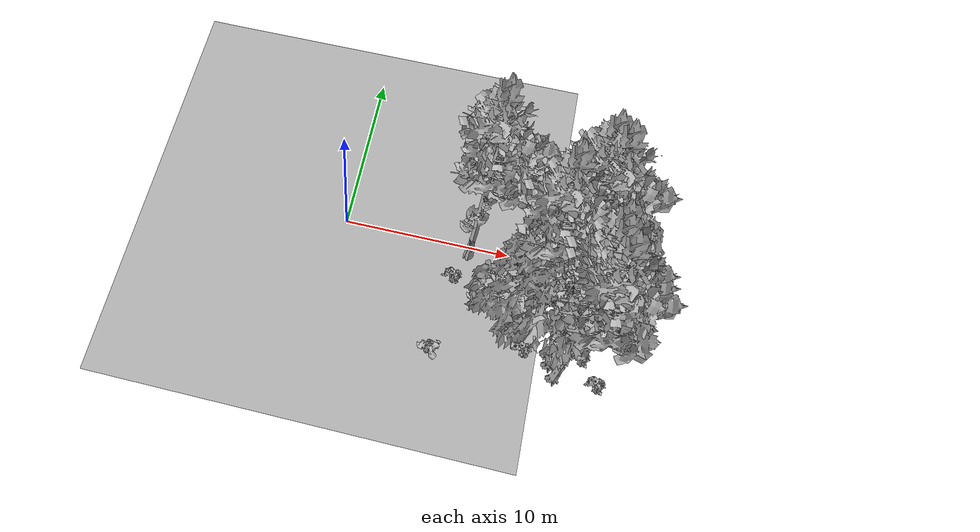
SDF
<sdf version="1.7">
 <world name="default">
  <model name="ground_plane">
   <static>1</static>
   <link name="link">
    <collision name="collision">
     <pose>-50 0 0 0 -0 0</pose>
     <geometry><plane><normal>0 0 1</normal><size>80 80</size></plane></geometry>
     <surface><contact><ode><min_depth>0.01</min_depth><max_vel>0</max_vel></ode></contact></surface>
    </collision>
    <visual name="grass">
     <cast_shadows>0</cast_shadows>
     <geometry>
      <mesh>
       <scale>0.46714285714285714 0.46714285714285714 0.1</scale>
       <uri>file://grass_plane/meshes/grass_plane.dae</uri>
      </mesh>
     </geometry>
    </visual>
   </link>
  </model>
  <model name="Tree 112">
   <static>1</static>
   <pose>13.443369570241934 -6.011805924724236 0 1.57079 -0 0</pose>
   <link name="link">
    <collision name="collision">
     <geometry><mesh><scale>3.5 5 3.5</scale><uri>model://tree_9/meshes/tree_9.obj</uri></mesh></geometry>
    </collision>
    <visual name="visual">
     <geometry><mesh><scale>3.5 5 3.5</scale><uri>model://tree_9/meshes/tree_9.obj</uri></mesh></geometry>
    </visual>
   </link>
  </model>
  <model name="Tree 174">
   <static>1</static>
   <pose>13.38417410480691 -5.46445035977024 0 1.57079 -0 0</pose>
   <link name="link">
    <collision name="collision">
     <geometry><mesh><scale>3.5 5 3.5</scale><uri>model://tree_9/meshes/tree_9.obj</uri></mesh></geometry>
    </collision>
    <visual name="visual">
     <geometry><mesh><scale>3.5 5 3.5</scale><uri>model://tree_9/meshes/tree_9.obj</uri></mesh></geometry>
    </visual>
   </link>
  </model>
  <model name="Tree 252">
   <static>1</static>
   <pose>13.440320900840938 -2.2874690477477273 0 1.57079 -0 0</pose>
   <link name="link">
    <collision name="collision">
     <geometry><mesh><scale>3.5 5 3.5</scale><uri>model://tree_2/meshes/tree_2.obj</uri></mesh></geometry>
    </collision>
    <visual name="visual">
     <geometry><mesh><scale>3.5 5 3.5</scale><uri>model://tree_2/meshes/tree_2.obj</uri></mesh></geometry>
    </visual>
   </link>
  </model>
  <model name="Tree 275">
   <static>1</static>
   <pose>13.149691221649732 -1.6502716162665507 0 1.57079 -0 0</pose>
   <link name="link">
    <collision name="collision">
     <geometry><mesh><scale>3.5 5 3.5</scale><uri>model://tree_9/meshes/tree_9.obj</uri></mesh></geometry>
    </collision>
    <visual name="visual">
     <geometry><mesh><scale>3.5 5 3.5</scale><uri>model://tree_9/meshes/tree_9.obj</uri></mesh></geometry>
    </visual>
   </link>
  </model>
  <model name="Tree 276">
   <static>1</static>
   <pose>7.681989460157439 -0.5636777708163336 0 1.57079 -0 0</pose>
   <link name="link">
    <collision name="collision">
     <geometry><mesh><scale>3.5 5 3.5</scale><uri>model://tree_9/meshes/tree_9.obj</uri></mesh></geometry>
    </collision>
    <visual name="visual">
     <geometry><mesh><scale>3.5 5 3.5</scale><uri>model://tree_9/meshes/tree_9.obj</uri></mesh></geometry>
    </visual>
   </link>
  </model>
  <model name="Tree 346">
   <static>1</static>
   <pose>12.546760151282449 -1.304693277121359 0 1.57079 -0 0</pose>
   <link name="link">
    <collision name="collision">
     <geometry><mesh><scale>3.5 5 3.5</scale><uri>model://tree_9/meshes/tree_9.obj</uri></mesh></geometry>
    </collision>
    <visual name="visual">
     <geometry><mesh><scale>3.5 5 3.5</scale><uri>model://tree_9/meshes/tree_9.obj</uri></mesh></geometry>
    </visual>
   </link>
  </model>
  <model name="Tree 524">
   <static>1</static>
   <pose>11.588094573133468 -4.972956877852042 0 1.57079 -0 0</pose>
   <link name="link">
    <collision name="collision">
     <geometry><mesh><scale>3.5 5 3.5</scale><uri>model://tree_2/meshes/tree_2.obj</uri></mesh></geometry>
    </collision>
    <visual name="visual">
     <geometry><mesh><scale>3.5 5 3.5</scale><uri>model://tree_2/meshes/tree_2.obj</uri></mesh></geometry>
    </visual>
   </link>
  </model>
  <model name="Tree 542">
   <static>1</static>
   <pose>11.157051692290608 -3.1228048936740294 0 1.57079 -0 0</pose>
   <link name="link">
    <collision name="collision">
     <geometry><mesh><scale>3.5 5 3.5</scale><uri>model://tree_9/meshes/tree_9.obj</uri></mesh></geometry>
    </collision>
    <visual name="visual">
     <geometry><mesh><scale>3.5 5 3.5</scale><uri>model://tree_9/meshes/tree_9.obj</uri></mesh></geometry>
    </visual>
   </link>
  </model>
  <model name="Tree 612">
   <static>1</static>
   <pose>13.798656640488716 -6.729752616913032 0 1.57079 -0 0</pose>
   <link name="link">
    <collision name="collision">
     <geometry><mesh><scale>3.5 5 3.5</scale><uri>model://tree_9/meshes/tree_9.obj</uri></mesh></geometry>
    </collision>
    <visual name="visual">
     <geometry><mesh><scale>3.5 5 3.5</scale><uri>model://tree_9/meshes/tree_9.obj</uri></mesh></geometry>
    </visual>
   </link>
  </model>
  <model name="Bush 47">
   <static>1</static>
   <pose>14.94408419045461 -3.2109747519997853 0 1.57079 -0 0</pose>
   <link name="link">
    <collision name="collision">
     <geometry><mesh><scale>2 2 2</scale><uri>model://bush_4/meshes/bush_4.obj</uri></mesh></geometry>
     <surface><contact><collide_without_contact>false</collide_without_contact></contact></surface>
    </collision>
    <visual name="visual">
     <geometry><mesh><scale>2 2 2</scale><uri>model://bush_4/meshes/bush_4.obj</uri></mesh></geometry>
    </visual>
   </link>
  </model>
  <model name="Bush 173">
   <static>1</static>
   <pose>15.115586260216553 -5.2869854791362485 0 1.57079 -0 0</pose>
   <link name="link">
    <collision name="collision">
     <geometry><mesh><scale>2 2 2</scale><uri>model://bush_2/meshes/bush_2.obj</uri></mesh></geometry>
     <surface><contact><collide_without_contact>false</collide_without_contact></contact></surface>
    </collision>
    <visual name="visual">
     <geometry><mesh><scale>2 2 2</scale><uri>model://bush_2/meshes/bush_2.obj</uri></mesh></geometry>
    </visual>
   </link>
  </model>
  <model name="Bush 210">
   <static>1</static>
   <pose>10.068934456624099 -1.9581382325161059 0 1.57079 -0 0</pose>
   <link name="link">
    <collision name="collision">
     <geometry><mesh><scale>2 2 2</scale><uri>model://bush_1/meshes/bush_1.obj</uri></mesh></geometry>
     <surface><contact><collide_without_contact>false</collide_without_contact></contact></surface>
    </collision>
    <visual name="visual">
     <geometry><mesh><scale>2 2 2</scale><uri>model://bush_1/meshes/bush_1.obj</uri></mesh></geometry>
    </visual>
   </link>
  </model>
  <model name="Bush 212">
   <static>1</static>
   <pose>13.553010576424654 -3.0813807665590858 0 1.57079 -0 0</pose>
   <link name="link">
    <collision name="collision">
     <geometry><mesh><scale>2 2 2</scale><uri>model://bush_2/meshes/bush_2.obj</uri></mesh></geometry>
     <surface><contact><collide_without_contact>false</collide_without_contact></contact></surface>
    </collision>
    <visual name="visual">
     <geometry><mesh><scale>2 2 2</scale><uri>model://bush_2/meshes/bush_2.obj</uri></mesh></geometry>
    </visual>
   </link>
  </model>
  <model name="Bush 229">
   <static>1</static>
   <pose>6.989508053151873 -2.014627946931178 0 1.57079 -0 0</pose>
   <link name="link">
    <collision name="collision">
     <geometry><mesh><scale>2 2 2</scale><uri>model://bush_2/meshes/bush_2.obj</uri></mesh></geometry>
     <surface><contact><collide_without_contact>false</collide_without_contact></contact></surface>
    </collision>
    <visual name="visual">
     <geometry><mesh><scale>2 2 2</scale><uri>model://bush_2/meshes/bush_2.obj</uri></mesh></geometry>
    </visual>
   </link>
  </model>
  <model name="Bush 263">
   <static>1</static>
   <pose>8.823897863526867 -3.326333796046697 0 1.57079 -0 0</pose>
   <link name="link">
    <collision name="collision">
     <geometry><mesh><scale>2 2 2</scale><uri>model://bush_0/meshes/bush_0.obj</uri></mesh></geometry>
     <surface><contact><collide_without_contact>false</collide_without_contact></contact></surface>
    </collision>
    <visual name="visual">
     <geometry><mesh><scale>2 2 2</scale><uri>model://bush_0/meshes/bush_0.obj</uri></mesh></geometry>
    </visual>
   </link>
  </model>
  <model name="Bush 294">
   <static>1</static>
   <pose>10.460736491877917 -2.70431266956745 0 1.57079 -0 0</pose>
   <link name="link">
    <collision name="collision">
     <geometry><mesh><scale>2 2 2</scale><uri>model://bush_2/meshes/bush_2.obj</uri></mesh></geometry>
     <surface><contact><collide_without_contact>false</collide_without_contact></contact></surface>
    </collision>
    <visual name="visual">
     <geometry><mesh><scale>2 2 2</scale><uri>model://bush_2/meshes/bush_2.obj</uri></mesh></geometry>
    </visual>
   </link>
  </model>
  <model name="Bush 333">
   <static>1</static>
   <pose>16.1513901805656 -6.6625162335049595 0 1.57079 -0 0</pose>
   <link name="link">
    <collision name="collision">
     <geometry><mesh><scale>2 2 2</scale><uri>model://bush_2/meshes/bush_2.obj</uri></mesh></geometry>
     <surface><contact><collide_without_contact>false</collide_without_contact></contact></surface>
    </collision>
    <visual name="visual">
     <geometry><mesh><scale>2 2 2</scale><uri>model://bush_2/meshes/bush_2.obj</uri></mesh></geometry>
    </visual>
   </link>
  </model>
  <model name="Bush 372">
   <static>1</static>
   <pose>12.436442192446158 -3.3022682931546257 0 1.57079 -0 0</pose>
   <link name="link">
    <collision name="collision">
     <geometry><mesh><scale>2 2 2</scale><uri>model://bush_2/meshes/bush_2.obj</uri></mesh></geometry>
     <surface><contact><collide_without_contact>false</collide_without_contact></contact></surface>
    </collision>
    <visual name="visual">
     <geometry><mesh><scale>2 2 2</scale><uri>model://bush_2/meshes/bush_2.obj</uri></mesh></geometry>
    </visual>
   </link>
  </model>
  <model name="Bush 427">
   <static>1</static>
   <pose>10.985295328174992 -0.4472006966513362 0 1.57079 -0 0</pose>
   <link name="link">
    <collision name="collision">
     <geometry><mesh><scale>2 2 2</scale><uri>model://bush_1/meshes/bush_1.obj</uri></mesh></geometry>
     <surface><contact><collide_without_contact>false</collide_without_contact></contact></surface>
    </collision>
    <visual name="visual">
     <geometry><mesh><scale>2 2 2</scale><uri>model://bush_1/meshes/bush_1.obj</uri></mesh></geometry>
    </visual>
   </link>
  </model>
  <model name="Bush 481">
   <static>1</static>
   <pose>6.641266906262651 -6.91586876532228 0 1.57079 -0 0</pose>
   <link name="link">
    <collision name="collision">
     <geometry><mesh><scale>2 2 2</scale><uri>model://bush_0/meshes/bush_0.obj</uri></mesh></geometry>
     <surface><contact><collide_without_contact>false</collide_without_contact></contact></surface>
    </collision>
    <visual name="visual">
     <geometry><mesh><scale>2 2 2</scale><uri>model://bush_0/meshes/bush_0.obj</uri></mesh></geometry>
    </visual>
   </link>
  </model>
  <model name="Bush 617">
   <static>1</static>
   <pose>11.98734072839914 -0.3635002179500262 0 1.57079 -0 0</pose>
   <link name="link">
    <collision name="collision">
     <geometry><mesh><scale>2 2 2</scale><uri>model://bush_2/meshes/bush_2.obj</uri></mesh></geometry>
     <surface><contact><collide_without_contact>false</collide_without_contact></contact></surface>
    </collision>
    <visual name="visual">
     <geometry><mesh><scale>2 2 2</scale><uri>model://bush_2/meshes/bush_2.obj</uri></mesh></geometry>
    </visual>
   </link>
  </model>
  <model name="Bush 630">
   <static>1</static>
   <pose>11.77849952868717 -5.55282649201785 0 1.57079 -0 0</pose>
   <link name="link">
    <collision name="collision">
     <geometry><mesh><scale>2 2 2</scale><uri>model://bush_2/meshes/bush_2.obj</uri></mesh></geometry>
     <surface><contact><collide_without_contact>false</collide_without_contact></contact></surface>
    </collision>
    <visual name="visual">
     <geometry><mesh><scale>2 2 2</scale><uri>model://bush_2/meshes/bush_2.obj</uri></mesh></geometry>
    </visual>
   </link>
  </model>
 </world>
</sdf>
